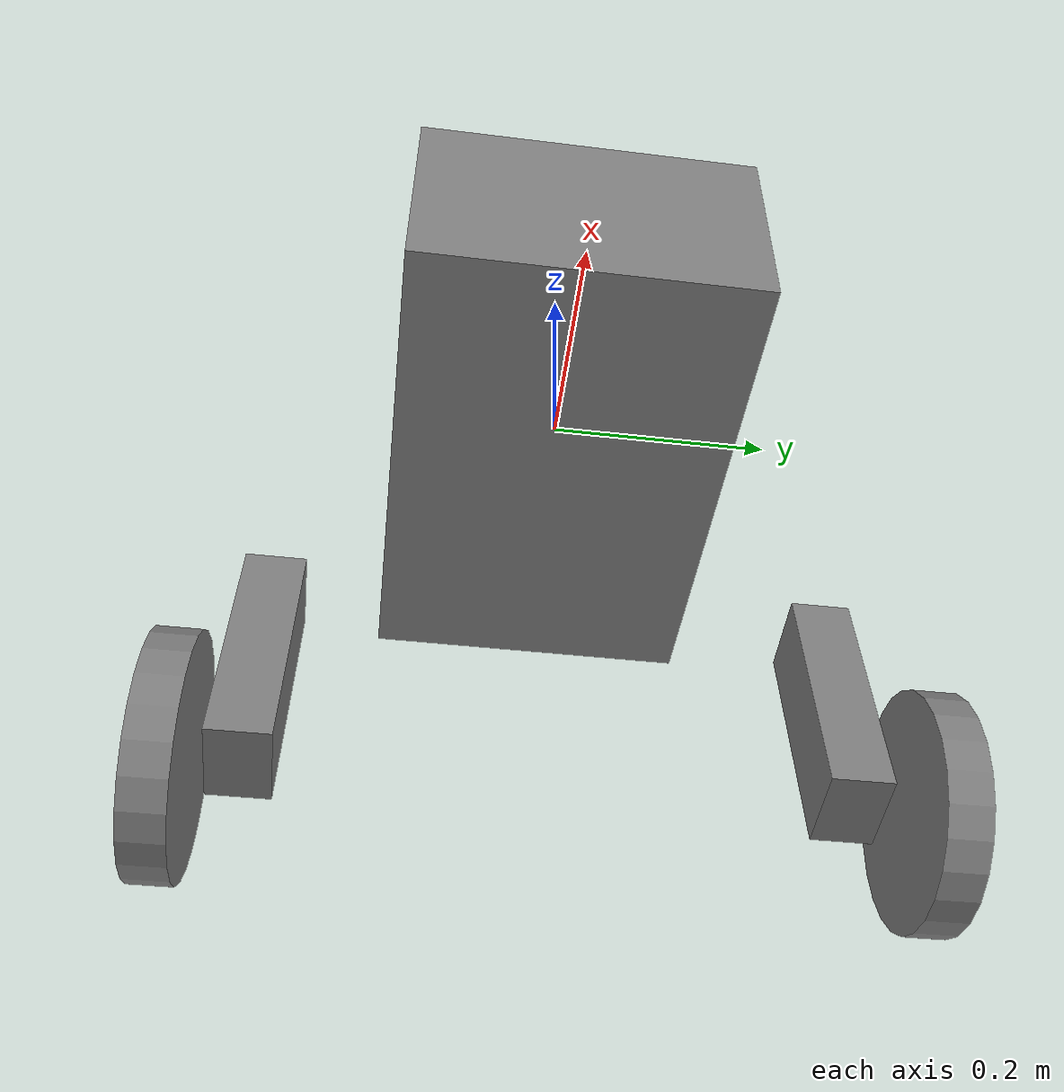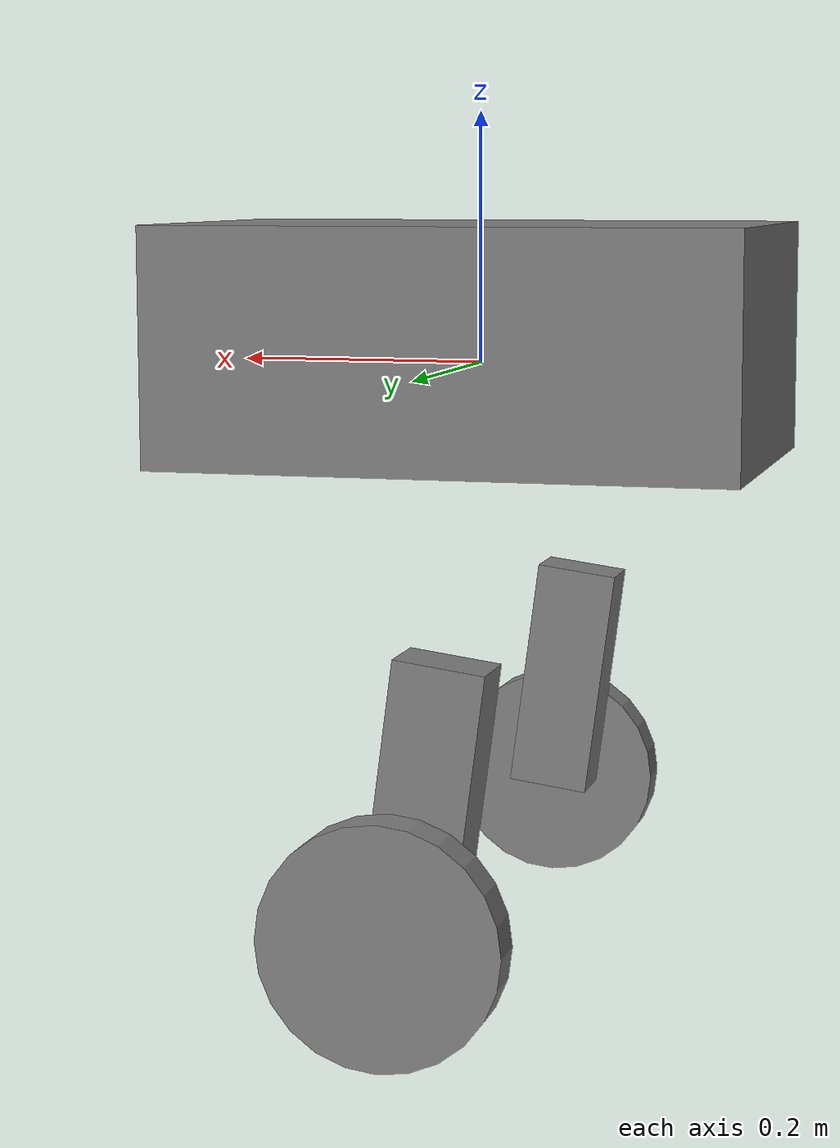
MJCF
<?xml version='1.0' encoding='utf-8'?>
<mujoco model="tita_ros2_control">
  <compiler angle="radian" boundmass="1e-06" boundinertia="1e-08" meshdir=".." />
  <worldbody>
    <body name="base_link">
      <inertial pos="0.0204521 3.63376e-06 0.01871" quat="0.521064 0.520817 -0.478529 0.477758" mass="13.2" diaginertia="0.0713022 0.0617858 0.0369343" />
      <joint type="free" />
      <geom size="0.235 0.15 0.095" pos="0 0 0.017" type="box" />
      <body name="left_leg_1" pos="0 0.0895 0" quat="0.499998 0.5 0.500002 0.5">
        <inertial pos="0.0016025 5.0253e-05 0.000638" quat="0.999804 -0.0010502 -0.019755 -9.57202e-05" mass="2.064" diaginertia="0.00430758 0.0029982 0.00226711" />
        <joint name="joint_left_leg_1" pos="0 0 0" axis="0 0 1" range="-0.785398 0.785398" actuatorfrcrange="-60 60" />
        <body name="left_leg_2" pos="0.1426 0 0" quat="0.499998 -0.5 0.500002 -0.5">
          <inertial pos="0.021763 0.0019069 -0.027868" quat="-0.00931458 0.711777 0.0101084 0.702271" mass="3.0984" diaginertia="0.00883636 0.00648624 0.00297469" />
          <joint name="joint_left_leg_2" pos="0 0 0" axis="0 0 1" range="-1.91986 3.49066" actuatorfrcrange="-60 60" />
          <body name="left_leg_3" pos="0.2 0 0">
            <inertial pos="0.095348 0.011698 0.001838" quat="0.03753 0.692169 -0.047281 0.719207" mass="0.57244" diaginertia="0.00342536 0.00324384 0.000258551" />
            <joint name="joint_left_leg_3" pos="0 0 0" axis="0 0 1" range="-2.67035 -0.698132" actuatorfrcrange="-60 60" />
            <geom size="0.1 0.035 0.025" pos="0.1 0.021 -0.002" quat="0.997856 0 0 -0.0654532" type="box" />
            <body name="left_leg_4" pos="0.2 0 0.0514">
              <inertial pos="-2.267e-06 -1.6471e-06 -0.00095616" quat="0.457615 0.539031 -0.457649 0.539066" mass="1.5094" diaginertia="0.0069049 0.00354775 0.00350415" />
              <joint name="joint_left_leg_4" pos="0 0 0" axis="0 0 1" range="-999999 999999" actuatorfrcrange="-15 15" />
              <geom size="0.0925 0.017" type="cylinder" />
            </body>
          </body>
        </body>
      </body>
      <body name="right_leg_1" pos="0 -0.0895 0" quat="0.499998 0.5 0.500002 0.5">
        <inertial pos="-0.0016025 5.0253e-05 0.00063801" quat="0.999804 -0.00104426 0.019755 9.54715e-05" mass="2.064" diaginertia="0.00430758 0.0029982 0.00226711" />
        <joint name="joint_right_leg_1" pos="0 0 0" axis="0 0 1" range="-0.785398 0.785398" actuatorfrcrange="-60 60" />
        <body name="right_leg_2" pos="-0.1426 0 0" quat="0.499998 -0.5 0.500002 -0.5">
          <inertial pos="0.021763 0.0019065 0.027873" quat="-0.0101102 0.702272 0.00931581 0.711776" mass="3.0987" diaginertia="0.00883636 0.00648624 0.00297469" />
          <joint name="joint_right_leg_2" pos="0 0 0" axis="0 0 1" range="-1.91986 3.49066" actuatorfrcrange="-60 60" />
          <body name="right_leg_3" pos="0.2 0 0">
            <inertial pos="0.095348 0.011698 -0.001838" quat="0.047281 0.719207 -0.03753 0.692169" mass="0.57244" diaginertia="0.00342536 0.00324384 0.000258551" />
            <joint name="joint_right_leg_3" pos="0 0 0" axis="0 0 1" range="-2.67035 -0.698132" actuatorfrcrange="-60 60" />
            <geom size="0.1 0.035 0.025" pos="0.1 0.021 -0.002" quat="0.997856 0 0 -0.0654532" type="box" />
            <body name="right_leg_4" pos="0.2 0 -0.0514">
              <inertial pos="-2.3798e-06 -1.5854e-06 0.00095595" quat="0.457221 0.539429 -0.457186 0.539395" mass="1.5094" diaginertia="0.0069047 0.00354767 0.00350403" />
              <joint name="joint_right_leg_4" pos="0 0 0" axis="0 0 1" range="-999999 999999" actuatorfrcrange="-15 15" />
              <geom size="0.0925 0.017" type="cylinder" />
            </body>
          </body>
        </body>
      </body>
    </body>
  </worldbody>
</mujoco>
